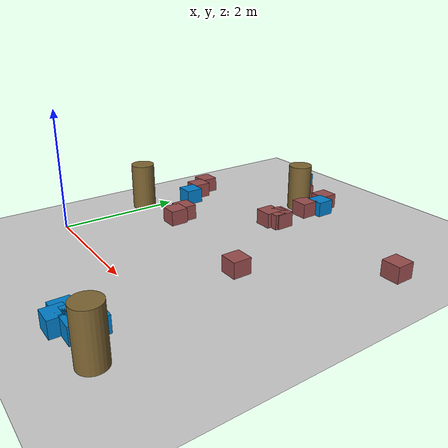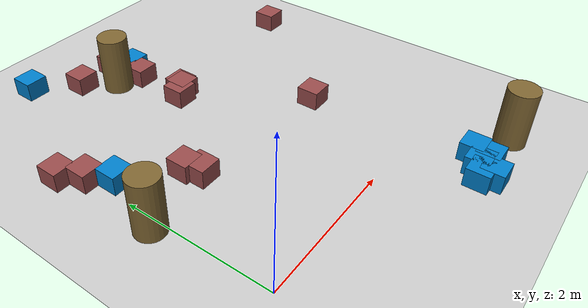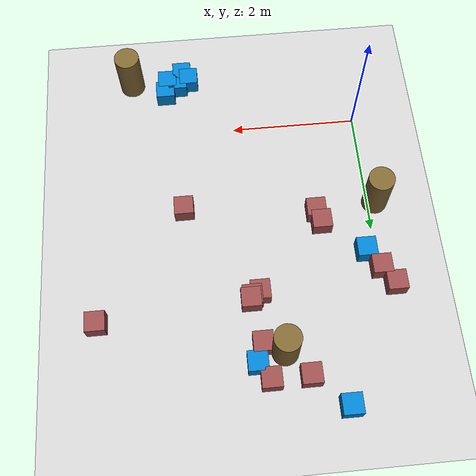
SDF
<sdf version="1.6">
 <world name="default">
  <model name="ground_plane">
   <static>1</static>
   <link name="link">
    <collision name="collision">
     <geometry><plane><normal>0 0 1</normal><size>100 100</size></plane></geometry>
     <surface><friction><ode><mu>100</mu><mu2>50</mu2></ode></friction></surface>
    </collision>
    <visual name="visual">
     <cast_shadows>0</cast_shadows>
     <geometry><plane><normal>0 0 1</normal><size>100 100</size></plane></geometry>
     <material>
      <script><uri>file://media/materials/scripts/gazebo.material</uri><name>Gazebo/Grey</name></script>
     </material>
    </visual>
   </link>
  </model>
  <model name="mini_cylinder_0_clone_0_clone_clone_clone_clone_4">
   <link name="link">
    <inertial>
     <mass>1</mass>
     <inertia><ixx>0.145833</ixx><ixy>0</ixy><ixz>0</ixz><iyy>0.145833</iyy><iyz>0</iyz><izz>0.125</izz></inertia>
    </inertial>
    <visual name="visual">
     <geometry><cylinder><radius>0.2</radius><length>0.8</length></cylinder></geometry>
     <material>
      <script><name>Gazebo/Grey</name><uri>file://media/materials/scripts/gazebo.material</uri></script>
      <shader type="vertex"><normal_map>__default__</normal_map></shader>
      <ambient>0.5 0.4 0.2 1</ambient>
      <diffuse>0.7 0.7 0.7 1</diffuse>
      <specular>0.01 0.01 0.01 1</specular>
      <emissive>0 0 0 1</emissive>
     </material>
    </visual>
    <collision name="collision">
     <geometry><cylinder><radius>0.2</radius><length>0.8</length></cylinder></geometry>
     <surface>
      <friction>
       <ode><mu>1</mu><mu2>1</mu2><fdir1>0 0 0</fdir1><slip1>0</slip1><slip2>0</slip2></ode>
       <torsional>
        <coefficient>1</coefficient>
        <patch_radius>0</patch_radius>
        <surface_radius>0</surface_radius>
        <use_patch_radius>1</use_patch_radius>
        <ode><slip>0</slip></ode>
       </torsional>
      </friction>
      <bounce><restitution_coefficient>0</restitution_coefficient><threshold>1e+06</threshold></bounce>
      <contact>
       <collide_without_contact>0</collide_without_contact>
       <collide_without_contact_bitmask>1</collide_without_contact_bitmask>
       <collide_bitmask>1</collide_bitmask>
       <ode>
        <soft_cfm>0</soft_cfm>
        <soft_erp>0.2</soft_erp>
        <kp>1e+13</kp>
        <kd>1</kd>
        <max_vel>0.01</max_vel>
        <min_depth>0</min_depth>
       </ode>
       <bullet>
        <split_impulse>1</split_impulse>
        <split_impulse_penetration_threshold>-0.01</split_impulse_penetration_threshold>
        <soft_cfm>0</soft_cfm>
        <soft_erp>0.2</soft_erp>
        <kp>1e+13</kp>
        <kd>1</kd>
       </bullet>
      </contact>
     </surface>
    </collision>
   </link>
   <static>1</static>
   <pose>-0.121853 1.53981 0.4 0 -0 0</pose>
  </model>
  <model name="mini_cylinder_0_clone_0_clone_clone_clone_clone_10">
   <link name="link">
    <inertial>
     <mass>1</mass>
     <inertia><ixx>0.145833</ixx><ixy>0</ixy><ixz>0</ixz><iyy>0.145833</iyy><iyz>0</iyz><izz>0.125</izz></inertia>
    </inertial>
    <visual name="visual">
     <geometry><cylinder><radius>0.2</radius><length>0.8</length></cylinder></geometry>
     <material>
      <script><name>Gazebo/Grey</name><uri>file://media/materials/scripts/gazebo.material</uri></script>
      <shader type="vertex"><normal_map>__default__</normal_map></shader>
      <ambient>0.5 0.4 0.2 1</ambient>
      <diffuse>0.7 0.7 0.7 1</diffuse>
      <specular>0.01 0.01 0.01 1</specular>
      <emissive>0 0 0 1</emissive>
     </material>
    </visual>
    <collision name="collision">
     <geometry><cylinder><radius>0.2</radius><length>0.8</length></cylinder></geometry>
     <surface>
      <friction>
       <ode><mu>1</mu><mu2>1</mu2><fdir1>0 0 0</fdir1><slip1>0</slip1><slip2>0</slip2></ode>
       <torsional>
        <coefficient>1</coefficient>
        <patch_radius>0</patch_radius>
        <surface_radius>0</surface_radius>
        <use_patch_radius>1</use_patch_radius>
        <ode><slip>0</slip></ode>
       </torsional>
      </friction>
      <bounce><restitution_coefficient>0</restitution_coefficient><threshold>1e+06</threshold></bounce>
      <contact>
       <collide_without_contact>0</collide_without_contact>
       <collide_without_contact_bitmask>1</collide_without_contact_bitmask>
       <collide_bitmask>1</collide_bitmask>
       <ode>
        <soft_cfm>0</soft_cfm>
        <soft_erp>0.2</soft_erp>
        <kp>1e+13</kp>
        <kd>1</kd>
        <max_vel>0.01</max_vel>
        <min_depth>0</min_depth>
       </ode>
       <bullet>
        <split_impulse>1</split_impulse>
        <split_impulse_penetration_threshold>-0.01</split_impulse_penetration_threshold>
        <soft_cfm>0</soft_cfm>
        <soft_erp>0.2</soft_erp>
        <kp>1e+13</kp>
        <kd>1</kd>
       </bullet>
      </contact>
     </surface>
    </collision>
   </link>
   <static>1</static>
   <pose>3.64698 -1.03635 0.4 0 -0 0</pose>
  </model>
  <model name="mini_cylinder_0_clone_0_clone_clone_clone_clone_12">
   <link name="link">
    <inertial>
     <mass>1</mass>
     <inertia><ixx>0.145833</ixx><ixy>0</ixy><ixz>0</ixz><iyy>0.145833</iyy><iyz>0</iyz><izz>0.125</izz></inertia>
    </inertial>
    <visual name="visual">
     <geometry><cylinder><radius>0.2</radius><length>0.8</length></cylinder></geometry>
     <material>
      <script><name>Gazebo/Grey</name><uri>file://media/materials/scripts/gazebo.material</uri></script>
      <shader type="vertex"><normal_map>__default__</normal_map></shader>
      <ambient>0.5 0.4 0.2 1</ambient>
      <diffuse>0.7 0.7 0.7 1</diffuse>
      <specular>0.01 0.01 0.01 1</specular>
      <emissive>0 0 0 1</emissive>
     </material>
    </visual>
    <collision name="collision">
     <geometry><cylinder><radius>0.2</radius><length>0.8</length></cylinder></geometry>
     <surface>
      <friction>
       <ode><mu>1</mu><mu2>1</mu2><fdir1>0 0 0</fdir1><slip1>0</slip1><slip2>0</slip2></ode>
       <torsional>
        <coefficient>1</coefficient>
        <patch_radius>0</patch_radius>
        <surface_radius>0</surface_radius>
        <use_patch_radius>1</use_patch_radius>
        <ode><slip>0</slip></ode>
       </torsional>
      </friction>
      <bounce><restitution_coefficient>0</restitution_coefficient><threshold>1e+06</threshold></bounce>
      <contact>
       <collide_without_contact>0</collide_without_contact>
       <collide_without_contact_bitmask>1</collide_without_contact_bitmask>
       <collide_bitmask>1</collide_bitmask>
       <ode>
        <soft_cfm>0</soft_cfm>
        <soft_erp>0.2</soft_erp>
        <kp>1e+13</kp>
        <kd>1</kd>
        <max_vel>0.01</max_vel>
        <min_depth>0</min_depth>
       </ode>
       <bullet>
        <split_impulse>1</split_impulse>
        <split_impulse_penetration_threshold>-0.01</split_impulse_penetration_threshold>
        <soft_cfm>0</soft_cfm>
        <soft_erp>0.2</soft_erp>
        <kp>1e+13</kp>
        <kd>1</kd>
       </bullet>
      </contact>
     </surface>
    </collision>
   </link>
   <static>1</static>
   <pose>1.56031 3.83174 0.4 0 -0 0</pose>
  </model>
  <model name="unit_box_0.3_red">
   <link name="link">
    <inertial>
     <mass>1</mass>
     <inertia>
      <ixx>0.166667</ixx>
      <ixy>0</ixy>
      <ixz>0</ixz>
      <iyy>0.166667</iyy>
      <iyz>0</iyz>
      <izz>0.166667</izz>
     </inertia>
    </inertial>
    <visual name="visual">
     <geometry><box><size>0.3 0.3 0.5</size></box></geometry>
     <material>
      <script><name>Gazebo/Grey</name><uri>file://media/materials/scripts/gazebo.material</uri></script>
      <shader type="pixel"><normal_map>__default__</normal_map></shader>
      <ambient>0.6 0.3 0.3 1</ambient>
      <diffuse>0.7 0.7 0.7 1</diffuse>
      <specular>0.01 0.01 0.01 1</specular>
      <emissive>0 0 0 1</emissive>
     </material>
    </visual>
    <collision name="collision">
     <geometry><box><size>0.3 0.3 0.5</size></box></geometry>
     <surface>
      <friction>
       <ode><mu>1</mu><mu2>1</mu2><fdir1>0 0 0</fdir1><slip1>0</slip1><slip2>0</slip2></ode>
       <torsional>
        <coefficient>1</coefficient>
        <patch_radius>0</patch_radius>
        <surface_radius>0</surface_radius>
        <use_patch_radius>1</use_patch_radius>
        <ode><slip>0</slip></ode>
       </torsional>
      </friction>
      <bounce><restitution_coefficient>0</restitution_coefficient><threshold>1e+06</threshold></bounce>
      <contact>
       <collide_without_contact>0</collide_without_contact>
       <collide_without_contact_bitmask>1</collide_without_contact_bitmask>
       <collide_bitmask>1</collide_bitmask>
       <ode>
        <soft_cfm>0</soft_cfm>
        <soft_erp>0.2</soft_erp>
        <kp>1e+13</kp>
        <kd>1</kd>
        <max_vel>0.01</max_vel>
        <min_depth>0</min_depth>
       </ode>
       <bullet>
        <split_impulse>1</split_impulse>
        <split_impulse_penetration_threshold>-0.01</split_impulse_penetration_threshold>
        <soft_cfm>0</soft_cfm>
        <soft_erp>0.2</soft_erp>
        <kp>1e+13</kp>
        <kd>1</kd>
       </bullet>
      </contact>
     </surface>
    </collision>
   </link>
   <static>0</static>
   <pose>0.832793 1.64215 0 0 -0 0</pose>
  </model>
  <model name="unit_box_0.3_grue">
   <link name="link">
    <inertial>
     <mass>1</mass>
     <inertia>
      <ixx>0.166667</ixx>
      <ixy>0</ixy>
      <ixz>0</ixz>
      <iyy>0.166667</iyy>
      <iyz>0</iyz>
      <izz>0.166667</izz>
     </inertia>
    </inertial>
    <visual name="visual">
     <geometry><box><size>0.3 0.3 0.5</size></box></geometry>
     <material>
      <script><name>Gazebo/Grey</name><uri>file://media/materials/scripts/gazebo.material</uri></script>
      <shader type="pixel"><normal_map>__default__</normal_map></shader>
      <ambient>0 0.5 0.8 1</ambient>
      <diffuse>0.7 0.7 0.7 1</diffuse>
      <specular>0.01 0.01 0.01 1</specular>
      <emissive>0 0 0 1</emissive>
     </material>
    </visual>
    <collision name="collision">
     <geometry><box><size>0.3 0.3 0.5</size></box></geometry>
     <surface>
      <friction>
       <ode><mu>1</mu><mu2>1</mu2><fdir1>0 0 0</fdir1><slip1>0</slip1><slip2>0</slip2></ode>
       <torsional>
        <coefficient>1</coefficient>
        <patch_radius>0</patch_radius>
        <surface_radius>0</surface_radius>
        <use_patch_radius>1</use_patch_radius>
        <ode><slip>0</slip></ode>
       </torsional>
      </friction>
      <bounce><restitution_coefficient>0</restitution_coefficient><threshold>1e+06</threshold></bounce>
      <contact>
       <collide_without_contact>0</collide_without_contact>
       <collide_without_contact_bitmask>1</collide_without_contact_bitmask>
       <collide_bitmask>1</collide_bitmask>
       <ode>
        <soft_cfm>0</soft_cfm>
        <soft_erp>0.2</soft_erp>
        <kp>1e+13</kp>
        <kd>1</kd>
        <max_vel>0.01</max_vel>
        <min_depth>0</min_depth>
       </ode>
       <bullet>
        <split_impulse>1</split_impulse>
        <split_impulse_penetration_threshold>-0.01</split_impulse_penetration_threshold>
        <soft_cfm>0</soft_cfm>
        <soft_erp>0.2</soft_erp>
        <kp>1e+13</kp>
        <kd>1</kd>
       </bullet>
      </contact>
     </surface>
    </collision>
   </link>
   <static>0</static>
   <pose>0.155019 2.37557 0 0 -0 0</pose>
  </model>
  <model name="unit_box_0.3_red_clone">
   <link name="link">
    <inertial>
     <mass>1</mass>
     <inertia>
      <ixx>0.166667</ixx>
      <ixy>0</ixy>
      <ixz>0</ixz>
      <iyy>0.166667</iyy>
      <iyz>0</iyz>
      <izz>0.166667</izz>
     </inertia>
    </inertial>
    <visual name="visual">
     <geometry><box><size>0.3 0.3 0.5</size></box></geometry>
     <material>
      <script><name>Gazebo/Grey</name><uri>file://media/materials/scripts/gazebo.material</uri></script>
      <shader type="pixel"><normal_map>__default__</normal_map></shader>
      <ambient>0.6 0.3 0.3 1</ambient>
      <diffuse>0.7 0.7 0.7 1</diffuse>
      <specular>0.01 0.01 0.01 1</specular>
      <emissive>0 0 0 1</emissive>
     </material>
    </visual>
    <collision name="collision">
     <geometry><box><size>0.3 0.3 0.5</size></box></geometry>
     <surface>
      <friction>
       <ode><mu>1</mu><mu2>1</mu2><fdir1>0 0 0</fdir1><slip1>0</slip1><slip2>0</slip2></ode>
       <torsional>
        <coefficient>1</coefficient>
        <patch_radius>0</patch_radius>
        <surface_radius>0</surface_radius>
        <use_patch_radius>1</use_patch_radius>
        <ode><slip>0</slip></ode>
       </torsional>
      </friction>
      <bounce><restitution_coefficient>0</restitution_coefficient><threshold>1e+06</threshold></bounce>
      <contact>
       <collide_without_contact>0</collide_without_contact>
       <collide_without_contact_bitmask>1</collide_without_contact_bitmask>
       <collide_bitmask>1</collide_bitmask>
       <ode>
        <soft_cfm>0</soft_cfm>
        <soft_erp>0.2</soft_erp>
        <kp>1e+13</kp>
        <kd>1</kd>
        <max_vel>0.01</max_vel>
        <min_depth>0</min_depth>
       </ode>
       <bullet>
        <split_impulse>1</split_impulse>
        <split_impulse_penetration_threshold>-0.01</split_impulse_penetration_threshold>
        <soft_cfm>0</soft_cfm>
        <soft_erp>0.2</soft_erp>
        <kp>1e+13</kp>
        <kd>1</kd>
       </bullet>
      </contact>
     </surface>
    </collision>
   </link>
   <static>0</static>
   <pose>0.773711 1.84988 0 0 -0 0</pose>
  </model>
  <model name="unit_box_0.3_red_clone_clone">
   <link name="link">
    <inertial>
     <mass>1</mass>
     <inertia>
      <ixx>0.166667</ixx>
      <ixy>0</ixy>
      <ixz>0</ixz>
      <iyy>0.166667</iyy>
      <iyz>0</iyz>
      <izz>0.166667</izz>
     </inertia>
    </inertial>
    <visual name="visual">
     <geometry><box><size>0.3 0.3 0.5</size></box></geometry>
     <material>
      <script><name>Gazebo/Grey</name><uri>file://media/materials/scripts/gazebo.material</uri></script>
      <shader type="pixel"><normal_map>__default__</normal_map></shader>
      <ambient>0.6 0.3 0.3 1</ambient>
      <diffuse>0.7 0.7 0.7 1</diffuse>
      <specular>0.01 0.01 0.01 1</specular>
      <emissive>0 0 0 1</emissive>
     </material>
    </visual>
    <collision name="collision">
     <geometry><box><size>0.3 0.3 0.5</size></box></geometry>
     <surface>
      <friction>
       <ode><mu>1</mu><mu2>1</mu2><fdir1>0 0 0</fdir1><slip1>0</slip1><slip2>0</slip2></ode>
       <torsional>
        <coefficient>1</coefficient>
        <patch_radius>0</patch_radius>
        <surface_radius>0</surface_radius>
        <use_patch_radius>1</use_patch_radius>
        <ode><slip>0</slip></ode>
       </torsional>
      </friction>
      <bounce><restitution_coefficient>0</restitution_coefficient><threshold>1e+06</threshold></bounce>
      <contact>
       <collide_without_contact>0</collide_without_contact>
       <collide_without_contact_bitmask>1</collide_without_contact_bitmask>
       <collide_bitmask>1</collide_bitmask>
       <ode>
        <soft_cfm>0</soft_cfm>
        <soft_erp>0.2</soft_erp>
        <kp>1e+13</kp>
        <kd>1</kd>
        <max_vel>0.01</max_vel>
        <min_depth>0</min_depth>
       </ode>
       <bullet>
        <split_impulse>1</split_impulse>
        <split_impulse_penetration_threshold>-0.01</split_impulse_penetration_threshold>
        <soft_cfm>0</soft_cfm>
        <soft_erp>0.2</soft_erp>
        <kp>1e+13</kp>
        <kd>1</kd>
       </bullet>
      </contact>
     </surface>
    </collision>
   </link>
   <static>0</static>
   <pose>2.89181 1.42945 0 0 -0 0</pose>
  </model>
  <model name="unit_box_0.3_red_clone_clone_0">
   <link name="link">
    <inertial>
     <mass>1</mass>
     <inertia>
      <ixx>0.166667</ixx>
      <ixy>0</ixy>
      <ixz>0</ixz>
      <iyy>0.166667</iyy>
      <iyz>0</iyz>
      <izz>0.166667</izz>
     </inertia>
    </inertial>
    <visual name="visual">
     <geometry><box><size>0.3 0.3 0.5</size></box></geometry>
     <material>
      <script><name>Gazebo/Grey</name><uri>file://media/materials/scripts/gazebo.material</uri></script>
      <shader type="pixel"><normal_map>__default__</normal_map></shader>
      <ambient>0.6 0.3 0.3 1</ambient>
      <diffuse>0.7 0.7 0.7 1</diffuse>
      <specular>0.01 0.01 0.01 1</specular>
      <emissive>0 0 0 1</emissive>
     </material>
    </visual>
    <collision name="collision">
     <geometry><box><size>0.3 0.3 0.5</size></box></geometry>
     <surface>
      <friction>
       <ode><mu>1</mu><mu2>1</mu2><fdir1>0 0 0</fdir1><slip1>0</slip1><slip2>0</slip2></ode>
       <torsional>
        <coefficient>1</coefficient>
        <patch_radius>0</patch_radius>
        <surface_radius>0</surface_radius>
        <use_patch_radius>1</use_patch_radius>
        <ode><slip>0</slip></ode>
       </torsional>
      </friction>
      <bounce><restitution_coefficient>0</restitution_coefficient><threshold>1e+06</threshold></bounce>
      <contact>
       <collide_without_contact>0</collide_without_contact>
       <collide_without_contact_bitmask>1</collide_without_contact_bitmask>
       <collide_bitmask>1</collide_bitmask>
       <ode>
        <soft_cfm>0</soft_cfm>
        <soft_erp>0.2</soft_erp>
        <kp>1e+13</kp>
        <kd>1</kd>
        <max_vel>0.01</max_vel>
        <min_depth>0</min_depth>
       </ode>
       <bullet>
        <split_impulse>1</split_impulse>
        <split_impulse_penetration_threshold>-0.01</split_impulse_penetration_threshold>
        <soft_cfm>0</soft_cfm>
        <soft_erp>0.2</soft_erp>
        <kp>1e+13</kp>
        <kd>1</kd>
       </bullet>
      </contact>
     </surface>
    </collision>
   </link>
   <static>0</static>
   <pose>-0.030499 2.66703 0 0 -0 0</pose>
  </model>
  <model name="unit_box_0.3_red_clone_clone_1">
   <link name="link">
    <inertial>
     <mass>1</mass>
     <inertia>
      <ixx>0.166667</ixx>
      <ixy>0</ixy>
      <ixz>0</ixz>
      <iyy>0.166667</iyy>
      <iyz>0</iyz>
      <izz>0.166667</izz>
     </inertia>
    </inertial>
    <visual name="visual">
     <geometry><box><size>0.3 0.3 0.5</size></box></geometry>
     <material>
      <script><name>Gazebo/Grey</name><uri>file://media/materials/scripts/gazebo.material</uri></script>
      <shader type="pixel"><normal_map>__default__</normal_map></shader>
      <ambient>0.6 0.3 0.3 1</ambient>
      <diffuse>0.7 0.7 0.7 1</diffuse>
      <specular>0.01 0.01 0.01 1</specular>
      <emissive>0 0 0 1</emissive>
     </material>
    </visual>
    <collision name="collision">
     <geometry><box><size>0.3 0.3 0.5</size></box></geometry>
     <surface>
      <friction>
       <ode><mu>1</mu><mu2>1</mu2><fdir1>0 0 0</fdir1><slip1>0</slip1><slip2>0</slip2></ode>
       <torsional>
        <coefficient>1</coefficient>
        <patch_radius>0</patch_radius>
        <surface_radius>0</surface_radius>
        <use_patch_radius>1</use_patch_radius>
        <ode><slip>0</slip></ode>
       </torsional>
      </friction>
      <bounce><restitution_coefficient>0</restitution_coefficient><threshold>1e+06</threshold></bounce>
      <contact>
       <collide_without_contact>0</collide_without_contact>
       <collide_without_contact_bitmask>1</collide_without_contact_bitmask>
       <collide_bitmask>1</collide_bitmask>
       <ode>
        <soft_cfm>0</soft_cfm>
        <soft_erp>0.2</soft_erp>
        <kp>1e+13</kp>
        <kd>1</kd>
        <max_vel>0.01</max_vel>
        <min_depth>0</min_depth>
       </ode>
       <bullet>
        <split_impulse>1</split_impulse>
        <split_impulse_penetration_threshold>-0.01</split_impulse_penetration_threshold>
        <soft_cfm>0</soft_cfm>
        <soft_erp>0.2</soft_erp>
        <kp>1e+13</kp>
        <kd>1</kd>
       </bullet>
      </contact>
     </surface>
    </collision>
   </link>
   <static>0</static>
   <pose>-0.207253 2.94546 0 0 -0 0</pose>
  </model>
  <model name="unit_box_0.3_grue_clone_5">
   <link name="link">
    <inertial>
     <mass>1</mass>
     <inertia>
      <ixx>0.166667</ixx>
      <ixy>0</ixy>
      <ixz>0</ixz>
      <iyy>0.166667</iyy>
      <iyz>0</iyz>
      <izz>0.166667</izz>
     </inertia>
    </inertial>
    <visual name="visual">
     <geometry><box><size>0.3 0.3 0.5</size></box></geometry>
     <material>
      <script><name>Gazebo/Grey</name><uri>file://media/materials/scripts/gazebo.material</uri></script>
      <shader type="pixel"><normal_map>__default__</normal_map></shader>
      <ambient>0 0.5 0.8 1</ambient>
      <diffuse>0.7 0.7 0.7 1</diffuse>
      <specular>0.01 0.01 0.01 1</specular>
      <emissive>0 0 0 1</emissive>
     </material>
    </visual>
    <collision name="collision">
     <geometry><box><size>0.3 0.3 0.5</size></box></geometry>
     <surface>
      <friction>
       <ode><mu>1</mu><mu2>1</mu2><fdir1>0 0 0</fdir1><slip1>0</slip1><slip2>0</slip2></ode>
       <torsional>
        <coefficient>1</coefficient>
        <patch_radius>0</patch_radius>
        <surface_radius>0</surface_radius>
        <use_patch_radius>1</use_patch_radius>
        <ode><slip>0</slip></ode>
       </torsional>
      </friction>
      <bounce><restitution_coefficient>0</restitution_coefficient><threshold>1e+06</threshold></bounce>
      <contact>
       <collide_without_contact>0</collide_without_contact>
       <collide_without_contact_bitmask>1</collide_without_contact_bitmask>
       <collide_bitmask>1</collide_bitmask>
       <ode>
        <soft_cfm>0</soft_cfm>
        <soft_erp>0.2</soft_erp>
        <kp>1e+13</kp>
        <kd>1</kd>
        <max_vel>0.01</max_vel>
        <min_depth>0</min_depth>
       </ode>
       <bullet>
        <split_impulse>1</split_impulse>
        <split_impulse_penetration_threshold>-0.01</split_impulse_penetration_threshold>
        <soft_cfm>0</soft_cfm>
        <soft_erp>0.2</soft_erp>
        <kp>1e+13</kp>
        <kd>1</kd>
       </bullet>
      </contact>
     </surface>
    </collision>
   </link>
   <static>0</static>
   <pose>0.730931 4.68311 0 0 -0 0</pose>
  </model>
  <model name="unit_box_0.3_red_clone_clone_0_clone_0">
   <link name="link">
    <inertial>
     <mass>1</mass>
     <inertia>
      <ixx>0.166667</ixx>
      <ixy>0</ixy>
      <ixz>0</ixz>
      <iyy>0.166667</iyy>
      <iyz>0</iyz>
      <izz>0.166667</izz>
     </inertia>
    </inertial>
    <visual name="visual">
     <geometry><box><size>0.3 0.3 0.5</size></box></geometry>
     <material>
      <script><name>Gazebo/Grey</name><uri>file://media/materials/scripts/gazebo.material</uri></script>
      <shader type="pixel"><normal_map>__default__</normal_map></shader>
      <ambient>0.6 0.3 0.3 1</ambient>
      <diffuse>0.7 0.7 0.7 1</diffuse>
      <specular>0.01 0.01 0.01 1</specular>
      <emissive>0 0 0 1</emissive>
     </material>
    </visual>
    <collision name="collision">
     <geometry><box><size>0.3 0.3 0.5</size></box></geometry>
     <surface>
      <friction>
       <ode><mu>1</mu><mu2>1</mu2><fdir1>0 0 0</fdir1><slip1>0</slip1><slip2>0</slip2></ode>
       <torsional>
        <coefficient>1</coefficient>
        <patch_radius>0</patch_radius>
        <surface_radius>0</surface_radius>
        <use_patch_radius>1</use_patch_radius>
        <ode><slip>0</slip></ode>
       </torsional>
      </friction>
      <bounce><restitution_coefficient>0</restitution_coefficient><threshold>1e+06</threshold></bounce>
      <contact>
       <collide_without_contact>0</collide_without_contact>
       <collide_without_contact_bitmask>1</collide_without_contact_bitmask>
       <collide_bitmask>1</collide_bitmask>
       <ode>
        <soft_cfm>0</soft_cfm>
        <soft_erp>0.2</soft_erp>
        <kp>1e+13</kp>
        <kd>1</kd>
        <max_vel>0.01</max_vel>
        <min_depth>0</min_depth>
       </ode>
       <bullet>
        <split_impulse>1</split_impulse>
        <split_impulse_penetration_threshold>-0.01</split_impulse_penetration_threshold>
        <soft_cfm>0</soft_cfm>
        <soft_erp>0.2</soft_erp>
        <kp>1e+13</kp>
        <kd>1</kd>
       </bullet>
      </contact>
     </surface>
    </collision>
   </link>
   <static>0</static>
   <pose>1.8708 3.69052 0 0 -0 0</pose>
  </model>
  <model name="unit_box_0.3_red_clone_clone_0_clone_1">
   <link name="link">
    <inertial>
     <mass>1</mass>
     <inertia>
      <ixx>0.166667</ixx>
      <ixy>0</ixy>
      <ixz>0</ixz>
      <iyy>0.166667</iyy>
      <iyz>0</iyz>
      <izz>0.166667</izz>
     </inertia>
    </inertial>
    <visual name="visual">
     <geometry><box><size>0.3 0.3 0.5</size></box></geometry>
     <material>
      <script><name>Gazebo/Grey</name><uri>file://media/materials/scripts/gazebo.material</uri></script>
      <shader type="pixel"><normal_map>__default__</normal_map></shader>
      <ambient>0.6 0.3 0.3 1</ambient>
      <diffuse>0.7 0.7 0.7 1</diffuse>
      <specular>0.01 0.01 0.01 1</specular>
      <emissive>0 0 0 1</emissive>
     </material>
    </visual>
    <collision name="collision">
     <geometry><box><size>0.3 0.3 0.5</size></box></geometry>
     <surface>
      <friction>
       <ode><mu>1</mu><mu2>1</mu2><fdir1>0 0 0</fdir1><slip1>0</slip1><slip2>0</slip2></ode>
       <torsional>
        <coefficient>1</coefficient>
        <patch_radius>0</patch_radius>
        <surface_radius>0</surface_radius>
        <use_patch_radius>1</use_patch_radius>
        <ode><slip>0</slip></ode>
       </torsional>
      </friction>
      <bounce><restitution_coefficient>0</restitution_coefficient><threshold>1e+06</threshold></bounce>
      <contact>
       <collide_without_contact>0</collide_without_contact>
       <collide_without_contact_bitmask>1</collide_without_contact_bitmask>
       <collide_bitmask>1</collide_bitmask>
       <ode>
        <soft_cfm>0</soft_cfm>
        <soft_erp>0.2</soft_erp>
        <kp>1e+13</kp>
        <kd>1</kd>
        <max_vel>0.01</max_vel>
        <min_depth>0</min_depth>
       </ode>
       <bullet>
        <split_impulse>1</split_impulse>
        <split_impulse_penetration_threshold>-0.01</split_impulse_penetration_threshold>
        <soft_cfm>0</soft_cfm>
        <soft_erp>0.2</soft_erp>
        <kp>1e+13</kp>
        <kd>1</kd>
       </bullet>
      </contact>
     </surface>
    </collision>
   </link>
   <static>0</static>
   <pose>1.8038 4.21728 0 0 -0 0</pose>
  </model>
  <model name="unit_box_0.3_red_clone_clone_0_clone_2">
   <link name="link">
    <inertial>
     <mass>1</mass>
     <inertia>
      <ixx>0.166667</ixx>
      <ixy>0</ixy>
      <ixz>0</ixz>
      <iyy>0.166667</iyy>
      <iyz>0</iyz>
      <izz>0.166667</izz>
     </inertia>
    </inertial>
    <visual name="visual">
     <geometry><box><size>0.3 0.3 0.5</size></box></geometry>
     <material>
      <script><name>Gazebo/Grey</name><uri>file://media/materials/scripts/gazebo.material</uri></script>
      <shader type="pixel"><normal_map>__default__</normal_map></shader>
      <ambient>0.6 0.3 0.3 1</ambient>
      <diffuse>0.7 0.7 0.7 1</diffuse>
      <specular>0.01 0.01 0.01 1</specular>
      <emissive>0 0 0 1</emissive>
     </material>
    </visual>
    <collision name="collision">
     <geometry><box><size>0.3 0.3 0.5</size></box></geometry>
     <surface>
      <friction>
       <ode><mu>1</mu><mu2>1</mu2><fdir1>0 0 0</fdir1><slip1>0</slip1><slip2>0</slip2></ode>
       <torsional>
        <coefficient>1</coefficient>
        <patch_radius>0</patch_radius>
        <surface_radius>0</surface_radius>
        <use_patch_radius>1</use_patch_radius>
        <ode><slip>0</slip></ode>
       </torsional>
      </friction>
      <bounce><restitution_coefficient>0</restitution_coefficient><threshold>1e+06</threshold></bounce>
      <contact>
       <collide_without_contact>0</collide_without_contact>
       <collide_without_contact_bitmask>1</collide_without_contact_bitmask>
       <collide_bitmask>1</collide_bitmask>
       <ode>
        <soft_cfm>0</soft_cfm>
        <soft_erp>0.2</soft_erp>
        <kp>1e+13</kp>
        <kd>1</kd>
        <max_vel>0.01</max_vel>
        <min_depth>0</min_depth>
       </ode>
       <bullet>
        <split_impulse>1</split_impulse>
        <split_impulse_penetration_threshold>-0.01</split_impulse_penetration_threshold>
        <soft_cfm>0</soft_cfm>
        <soft_erp>0.2</soft_erp>
        <kp>1e+13</kp>
        <kd>1</kd>
       </bullet>
      </contact>
     </surface>
    </collision>
   </link>
   <static>0</static>
   <pose>1.23431 4.21326 0 0 -0 0</pose>
  </model>
  <model name="unit_box_0.3_red_clone_clone_0_clone_3">
   <link name="link">
    <inertial>
     <mass>1</mass>
     <inertia>
      <ixx>0.166667</ixx>
      <ixy>0</ixy>
      <ixz>0</ixz>
      <iyy>0.166667</iyy>
      <iyz>0</iyz>
      <izz>0.166667</izz>
     </inertia>
    </inertial>
    <visual name="visual">
     <geometry><box><size>0.3 0.3 0.5</size></box></geometry>
     <material>
      <script><name>Gazebo/Grey</name><uri>file://media/materials/scripts/gazebo.material</uri></script>
      <shader type="pixel"><normal_map>__default__</normal_map></shader>
      <ambient>0.6 0.3 0.3 1</ambient>
      <diffuse>0.7 0.7 0.7 1</diffuse>
      <specular>0.01 0.01 0.01 1</specular>
      <emissive>0 0 0 1</emissive>
     </material>
    </visual>
    <collision name="collision">
     <geometry><box><size>0.3 0.3 0.5</size></box></geometry>
     <surface>
      <friction>
       <ode><mu>1</mu><mu2>1</mu2><fdir1>0 0 0</fdir1><slip1>0</slip1><slip2>0</slip2></ode>
       <torsional>
        <coefficient>1</coefficient>
        <patch_radius>0</patch_radius>
        <surface_radius>0</surface_radius>
        <use_patch_radius>1</use_patch_radius>
        <ode><slip>0</slip></ode>
       </torsional>
      </friction>
      <bounce><restitution_coefficient>0</restitution_coefficient><threshold>1e+06</threshold></bounce>
      <contact>
       <collide_without_contact>0</collide_without_contact>
       <collide_without_contact_bitmask>1</collide_without_contact_bitmask>
       <collide_bitmask>1</collide_bitmask>
       <ode>
        <soft_cfm>0</soft_cfm>
        <soft_erp>0.2</soft_erp>
        <kp>1e+13</kp>
        <kd>1</kd>
        <max_vel>0.01</max_vel>
        <min_depth>0</min_depth>
       </ode>
       <bullet>
        <split_impulse>1</split_impulse>
        <split_impulse_penetration_threshold>-0.01</split_impulse_penetration_threshold>
        <soft_cfm>0</soft_cfm>
        <soft_erp>0.2</soft_erp>
        <kp>1e+13</kp>
        <kd>1</kd>
       </bullet>
      </contact>
     </surface>
    </collision>
   </link>
   <static>0</static>
   <pose>4.27944 3.18019 0 0 -0 0</pose>
  </model>
  <model name="unit_box_0.3_grue_clone_7">
   <link name="link">
    <inertial>
     <mass>1</mass>
     <inertia>
      <ixx>0.166667</ixx>
      <ixy>0</ixy>
      <ixz>0</ixz>
      <iyy>0.166667</iyy>
      <iyz>0</iyz>
      <izz>0.166667</izz>
     </inertia>
    </inertial>
    <visual name="visual">
     <geometry><box><size>0.3 0.3 0.5</size></box></geometry>
     <material>
      <script><name>Gazebo/Grey</name><uri>file://media/materials/scripts/gazebo.material</uri></script>
      <shader type="pixel"><normal_map>__default__</normal_map></shader>
      <ambient>0 0.5 0.8 1</ambient>
      <diffuse>0.7 0.7 0.7 1</diffuse>
      <specular>0.01 0.01 0.01 1</specular>
      <emissive>0 0 0 1</emissive>
     </material>
    </visual>
    <collision name="collision">
     <geometry><box><size>0.3 0.3 0.5</size></box></geometry>
     <surface>
      <friction>
       <ode><mu>1</mu><mu2>1</mu2><fdir1>0 0 0</fdir1><slip1>0</slip1><slip2>0</slip2></ode>
       <torsional>
        <coefficient>1</coefficient>
        <patch_radius>0</patch_radius>
        <surface_radius>0</surface_radius>
        <use_patch_radius>1</use_patch_radius>
        <ode><slip>0</slip></ode>
       </torsional>
      </friction>
      <bounce><restitution_coefficient>0</restitution_coefficient><threshold>1e+06</threshold></bounce>
      <contact>
       <collide_without_contact>0</collide_without_contact>
       <collide_without_contact_bitmask>1</collide_without_contact_bitmask>
       <collide_bitmask>1</collide_bitmask>
       <ode>
        <soft_cfm>0</soft_cfm>
        <soft_erp>0.2</soft_erp>
        <kp>1e+13</kp>
        <kd>1</kd>
        <max_vel>0.01</max_vel>
        <min_depth>0</min_depth>
       </ode>
       <bullet>
        <split_impulse>1</split_impulse>
        <split_impulse_penetration_threshold>-0.01</split_impulse_penetration_threshold>
        <soft_cfm>0</soft_cfm>
        <soft_erp>0.2</soft_erp>
        <kp>1e+13</kp>
        <kd>1</kd>
       </bullet>
      </contact>
     </surface>
    </collision>
   </link>
   <static>0</static>
   <pose>3.04238 -0.98343 0 0 -0 0</pose>
  </model>
  <model name="unit_box_0.3_grue_clone_8">
   <link name="link">
    <inertial>
     <mass>1</mass>
     <inertia>
      <ixx>0.166667</ixx>
      <ixy>0</ixy>
      <ixz>0</ixz>
      <iyy>0.166667</iyy>
      <iyz>0</iyz>
      <izz>0.166667</izz>
     </inertia>
    </inertial>
    <visual name="visual">
     <geometry><box><size>0.3 0.3 0.5</size></box></geometry>
     <material>
      <script><name>Gazebo/Grey</name><uri>file://media/materials/scripts/gazebo.material</uri></script>
      <shader type="pixel"><normal_map>__default__</normal_map></shader>
      <ambient>0 0.5 0.8 1</ambient>
      <diffuse>0.7 0.7 0.7 1</diffuse>
      <specular>0.01 0.01 0.01 1</specular>
      <emissive>0 0 0 1</emissive>
     </material>
    </visual>
    <collision name="collision">
     <geometry><box><size>0.3 0.3 0.5</size></box></geometry>
     <surface>
      <friction>
       <ode><mu>1</mu><mu2>1</mu2><fdir1>0 0 0</fdir1><slip1>0</slip1><slip2>0</slip2></ode>
       <torsional>
        <coefficient>1</coefficient>
        <patch_radius>0</patch_radius>
        <surface_radius>0</surface_radius>
        <use_patch_radius>1</use_patch_radius>
        <ode><slip>0</slip></ode>
       </torsional>
      </friction>
      <bounce><restitution_coefficient>0</restitution_coefficient><threshold>1e+06</threshold></bounce>
      <contact>
       <collide_without_contact>0</collide_without_contact>
       <collide_without_contact_bitmask>1</collide_without_contact_bitmask>
       <collide_bitmask>1</collide_bitmask>
       <ode>
        <soft_cfm>0</soft_cfm>
        <soft_erp>0.2</soft_erp>
        <kp>1e+13</kp>
        <kd>1</kd>
        <max_vel>0.01</max_vel>
        <min_depth>0</min_depth>
       </ode>
       <bullet>
        <split_impulse>1</split_impulse>
        <split_impulse_penetration_threshold>-0.01</split_impulse_penetration_threshold>
        <soft_cfm>0</soft_cfm>
        <soft_erp>0.2</soft_erp>
        <kp>1e+13</kp>
        <kd>1</kd>
       </bullet>
      </contact>
     </surface>
    </collision>
   </link>
   <static>0</static>
   <pose>2.87323 -0.921358 0 0 -0 0</pose>
  </model>
  <model name="unit_box_0.3_grue_clone_9">
   <link name="link">
    <inertial>
     <mass>1</mass>
     <inertia>
      <ixx>0.166667</ixx>
      <ixy>0</ixy>
      <ixz>0</ixz>
      <iyy>0.166667</iyy>
      <iyz>0</iyz>
      <izz>0.166667</izz>
     </inertia>
    </inertial>
    <visual name="visual">
     <geometry><box><size>0.3 0.3 0.5</size></box></geometry>
     <material>
      <script><name>Gazebo/Grey</name><uri>file://media/materials/scripts/gazebo.material</uri></script>
      <shader type="pixel"><normal_map>__default__</normal_map></shader>
      <ambient>0 0.5 0.8 1</ambient>
      <diffuse>0.7 0.7 0.7 1</diffuse>
      <specular>0.01 0.01 0.01 1</specular>
      <emissive>0 0 0 1</emissive>
     </material>
    </visual>
    <collision name="collision">
     <geometry><box><size>0.3 0.3 0.5</size></box></geometry>
     <surface>
      <friction>
       <ode><mu>1</mu><mu2>1</mu2><fdir1>0 0 0</fdir1><slip1>0</slip1><slip2>0</slip2></ode>
       <torsional>
        <coefficient>1</coefficient>
        <patch_radius>0</patch_radius>
        <surface_radius>0</surface_radius>
        <use_patch_radius>1</use_patch_radius>
        <ode><slip>0</slip></ode>
       </torsional>
      </friction>
      <bounce><restitution_coefficient>0</restitution_coefficient><threshold>1e+06</threshold></bounce>
      <contact>
       <collide_without_contact>0</collide_without_contact>
       <collide_without_contact_bitmask>1</collide_without_contact_bitmask>
       <collide_bitmask>1</collide_bitmask>
       <ode>
        <soft_cfm>0</soft_cfm>
        <soft_erp>0.2</soft_erp>
        <kp>1e+13</kp>
        <kd>1</kd>
        <max_vel>0.01</max_vel>
        <min_depth>0</min_depth>
       </ode>
       <bullet>
        <split_impulse>1</split_impulse>
        <split_impulse_penetration_threshold>-0.01</split_impulse_penetration_threshold>
        <soft_cfm>0</soft_cfm>
        <soft_erp>0.2</soft_erp>
        <kp>1e+13</kp>
        <kd>1</kd>
       </bullet>
      </contact>
     </surface>
    </collision>
   </link>
   <static>0</static>
   <pose>2.7904 -1.13289 0 0 -0 0</pose>
  </model>
  <model name="unit_box_0.3_grue_clone_10">
   <link name="link">
    <inertial>
     <mass>1</mass>
     <inertia>
      <ixx>0.166667</ixx>
      <ixy>0</ixy>
      <ixz>0</ixz>
      <iyy>0.166667</iyy>
      <iyz>0</iyz>
      <izz>0.166667</izz>
     </inertia>
    </inertial>
    <visual name="visual">
     <geometry><box><size>0.3 0.3 0.5</size></box></geometry>
     <material>
      <script><name>Gazebo/Grey</name><uri>file://media/materials/scripts/gazebo.material</uri></script>
      <shader type="pixel"><normal_map>__default__</normal_map></shader>
      <ambient>0 0.5 0.8 1</ambient>
      <diffuse>0.7 0.7 0.7 1</diffuse>
      <specular>0.01 0.01 0.01 1</specular>
      <emissive>0 0 0 1</emissive>
     </material>
    </visual>
    <collision name="collision">
     <geometry><box><size>0.3 0.3 0.5</size></box></geometry>
     <surface>
      <friction>
       <ode><mu>1</mu><mu2>1</mu2><fdir1>0 0 0</fdir1><slip1>0</slip1><slip2>0</slip2></ode>
       <torsional>
        <coefficient>1</coefficient>
        <patch_radius>0</patch_radius>
        <surface_radius>0</surface_radius>
        <use_patch_radius>1</use_patch_radius>
        <ode><slip>0</slip></ode>
       </torsional>
      </friction>
      <bounce><restitution_coefficient>0</restitution_coefficient><threshold>1e+06</threshold></bounce>
      <contact>
       <collide_without_contact>0</collide_without_contact>
       <collide_without_contact_bitmask>1</collide_without_contact_bitmask>
       <collide_bitmask>1</collide_bitmask>
       <ode>
        <soft_cfm>0</soft_cfm>
        <soft_erp>0.2</soft_erp>
        <kp>1e+13</kp>
        <kd>1</kd>
        <max_vel>0.01</max_vel>
        <min_depth>0</min_depth>
       </ode>
       <bullet>
        <split_impulse>1</split_impulse>
        <split_impulse_penetration_threshold>-0.01</split_impulse_penetration_threshold>
        <soft_cfm>0</soft_cfm>
        <soft_erp>0.2</soft_erp>
        <kp>1e+13</kp>
        <kd>1</kd>
       </bullet>
      </contact>
     </surface>
    </collision>
   </link>
   <static>0</static>
   <pose>3.08312 -0.772228 0 0 -0 0</pose>
  </model>
  <model name="unit_box_0.3_grue_clone_11">
   <link name="link">
    <inertial>
     <mass>1</mass>
     <inertia>
      <ixx>0.166667</ixx>
      <ixy>0</ixy>
      <ixz>0</ixz>
      <iyy>0.166667</iyy>
      <iyz>0</iyz>
      <izz>0.166667</izz>
     </inertia>
    </inertial>
    <visual name="visual">
     <geometry><box><size>0.3 0.3 0.5</size></box></geometry>
     <material>
      <script><name>Gazebo/Grey</name><uri>file://media/materials/scripts/gazebo.material</uri></script>
      <shader type="pixel"><normal_map>__default__</normal_map></shader>
      <ambient>0 0.5 0.8 1</ambient>
      <diffuse>0.7 0.7 0.7 1</diffuse>
      <specular>0.01 0.01 0.01 1</specular>
      <emissive>0 0 0 1</emissive>
     </material>
    </visual>
    <collision name="collision">
     <geometry><box><size>0.3 0.3 0.5</size></box></geometry>
     <surface>
      <friction>
       <ode><mu>1</mu><mu2>1</mu2><fdir1>0 0 0</fdir1><slip1>0</slip1><slip2>0</slip2></ode>
       <torsional>
        <coefficient>1</coefficient>
        <patch_radius>0</patch_radius>
        <surface_radius>0</surface_radius>
        <use_patch_radius>1</use_patch_radius>
        <ode><slip>0</slip></ode>
       </torsional>
      </friction>
      <bounce><restitution_coefficient>0</restitution_coefficient><threshold>1e+06</threshold></bounce>
      <contact>
       <collide_without_contact>0</collide_without_contact>
       <collide_without_contact_bitmask>1</collide_without_contact_bitmask>
       <collide_bitmask>1</collide_bitmask>
       <ode>
        <soft_cfm>0</soft_cfm>
        <soft_erp>0.2</soft_erp>
        <kp>1e+13</kp>
        <kd>1</kd>
        <max_vel>0.01</max_vel>
        <min_depth>0</min_depth>
       </ode>
       <bullet>
        <split_impulse>1</split_impulse>
        <split_impulse_penetration_threshold>-0.01</split_impulse_penetration_threshold>
        <soft_cfm>0</soft_cfm>
        <soft_erp>0.2</soft_erp>
        <kp>1e+13</kp>
        <kd>1</kd>
       </bullet>
      </contact>
     </surface>
    </collision>
   </link>
   <static>0</static>
   <pose>2.68408 -1.00711 0 0 -0 0</pose>
  </model>
  <model name="unit_box_0.3_grue_clone_19">
   <link name="link">
    <inertial>
     <mass>1</mass>
     <inertia>
      <ixx>0.166667</ixx>
      <ixy>0</ixy>
      <ixz>0</ixz>
      <iyy>0.166667</iyy>
      <iyz>0</iyz>
      <izz>0.166667</izz>
     </inertia>
    </inertial>
    <visual name="visual">
     <geometry><box><size>0.3 0.3 0.5</size></box></geometry>
     <material>
      <script><name>Gazebo/Grey</name><uri>file://media/materials/scripts/gazebo.material</uri></script>
      <shader type="pixel"><normal_map>__default__</normal_map></shader>
      <ambient>0 0.5 0.8 1</ambient>
      <diffuse>0.7 0.7 0.7 1</diffuse>
      <specular>0.01 0.01 0.01 1</specular>
      <emissive>0 0 0 1</emissive>
     </material>
    </visual>
    <collision name="collision">
     <geometry><box><size>0.3 0.3 0.5</size></box></geometry>
     <surface>
      <friction>
       <ode><mu>1</mu><mu2>1</mu2><fdir1>0 0 0</fdir1><slip1>0</slip1><slip2>0</slip2></ode>
       <torsional>
        <coefficient>1</coefficient>
        <patch_radius>0</patch_radius>
        <surface_radius>0</surface_radius>
        <use_patch_radius>1</use_patch_radius>
        <ode><slip>0</slip></ode>
       </torsional>
      </friction>
      <bounce><restitution_coefficient>0</restitution_coefficient><threshold>1e+06</threshold></bounce>
      <contact>
       <collide_without_contact>0</collide_without_contact>
       <collide_without_contact_bitmask>1</collide_without_contact_bitmask>
       <collide_bitmask>1</collide_bitmask>
       <ode>
        <soft_cfm>0</soft_cfm>
        <soft_erp>0.2</soft_erp>
        <kp>1e+13</kp>
        <kd>1</kd>
        <max_vel>0.01</max_vel>
        <min_depth>0</min_depth>
       </ode>
       <bullet>
        <split_impulse>1</split_impulse>
        <split_impulse_penetration_threshold>-0.01</split_impulse_penetration_threshold>
        <soft_cfm>0</soft_cfm>
        <soft_erp>0.2</soft_erp>
        <kp>1e+13</kp>
        <kd>1</kd>
       </bullet>
      </contact>
     </surface>
    </collision>
   </link>
   <static>0</static>
   <pose>1.97423 3.9654 0 0 -0 0</pose>
  </model>
  <model name="unit_box_0.3_red_clone_clone_clone_2">
   <link name="link">
    <inertial>
     <mass>1</mass>
     <inertia>
      <ixx>0.166667</ixx>
      <ixy>0</ixy>
      <ixz>0</ixz>
      <iyy>0.166667</iyy>
      <iyz>0</iyz>
      <izz>0.166667</izz>
     </inertia>
    </inertial>
    <visual name="visual">
     <geometry><box><size>0.3 0.3 0.5</size></box></geometry>
     <material>
      <script><name>Gazebo/Grey</name><uri>file://media/materials/scripts/gazebo.material</uri></script>
      <shader type="pixel"><normal_map>__default__</normal_map></shader>
      <ambient>0.6 0.3 0.3 1</ambient>
      <diffuse>0.7 0.7 0.7 1</diffuse>
      <specular>0.01 0.01 0.01 1</specular>
      <emissive>0 0 0 1</emissive>
     </material>
    </visual>
    <collision name="collision">
     <geometry><box><size>0.3 0.3 0.5</size></box></geometry>
     <surface>
      <friction>
       <ode><mu>1</mu><mu2>1</mu2><fdir1>0 0 0</fdir1><slip1>0</slip1><slip2>0</slip2></ode>
       <torsional>
        <coefficient>1</coefficient>
        <patch_radius>0</patch_radius>
        <surface_radius>0</surface_radius>
        <use_patch_radius>1</use_patch_radius>
        <ode><slip>0</slip></ode>
       </torsional>
      </friction>
      <bounce><restitution_coefficient>0</restitution_coefficient><threshold>1e+06</threshold></bounce>
      <contact>
       <collide_without_contact>0</collide_without_contact>
       <collide_without_contact_bitmask>1</collide_without_contact_bitmask>
       <collide_bitmask>1</collide_bitmask>
       <ode>
        <soft_cfm>0</soft_cfm>
        <soft_erp>0.2</soft_erp>
        <kp>1e+13</kp>
        <kd>1</kd>
        <max_vel>0.01</max_vel>
        <min_depth>0</min_depth>
       </ode>
       <bullet>
        <split_impulse>1</split_impulse>
        <split_impulse_penetration_threshold>-0.01</split_impulse_penetration_threshold>
        <soft_cfm>0</soft_cfm>
        <soft_erp>0.2</soft_erp>
        <kp>1e+13</kp>
        <kd>1</kd>
       </bullet>
      </contact>
     </surface>
    </collision>
   </link>
   <static>0</static>
   <pose>1.96077 2.97396 0 0 -0 0</pose>
  </model>
  <model name="unit_box_0.3_red_clone_clone_clone_3">
   <link name="link">
    <inertial>
     <mass>1</mass>
     <inertia>
      <ixx>0.166667</ixx>
      <ixy>0</ixy>
      <ixz>0</ixz>
      <iyy>0.166667</iyy>
      <iyz>0</iyz>
      <izz>0.166667</izz>
     </inertia>
    </inertial>
    <visual name="visual">
     <geometry><box><size>0.3 0.3 0.5</size></box></geometry>
     <material>
      <script><name>Gazebo/Grey</name><uri>file://media/materials/scripts/gazebo.material</uri></script>
      <shader type="pixel"><normal_map>__default__</normal_map></shader>
      <ambient>0.6 0.3 0.3 1</ambient>
      <diffuse>0.7 0.7 0.7 1</diffuse>
      <specular>0.01 0.01 0.01 1</specular>
      <emissive>0 0 0 1</emissive>
     </material>
    </visual>
    <collision name="collision">
     <geometry><box><size>0.3 0.3 0.5</size></box></geometry>
     <surface>
      <friction>
       <ode><mu>1</mu><mu2>1</mu2><fdir1>0 0 0</fdir1><slip1>0</slip1><slip2>0</slip2></ode>
       <torsional>
        <coefficient>1</coefficient>
        <patch_radius>0</patch_radius>
        <surface_radius>0</surface_radius>
        <use_patch_radius>1</use_patch_radius>
        <ode><slip>0</slip></ode>
       </torsional>
      </friction>
      <bounce><restitution_coefficient>0</restitution_coefficient><threshold>1e+06</threshold></bounce>
      <contact>
       <collide_without_contact>0</collide_without_contact>
       <collide_without_contact_bitmask>1</collide_without_contact_bitmask>
       <collide_bitmask>1</collide_bitmask>
       <ode>
        <soft_cfm>0</soft_cfm>
        <soft_erp>0.2</soft_erp>
        <kp>1e+13</kp>
        <kd>1</kd>
        <max_vel>0.01</max_vel>
        <min_depth>0</min_depth>
       </ode>
       <bullet>
        <split_impulse>1</split_impulse>
        <split_impulse_penetration_threshold>-0.01</split_impulse_penetration_threshold>
        <soft_cfm>0</soft_cfm>
        <soft_erp>0.2</soft_erp>
        <kp>1e+13</kp>
        <kd>1</kd>
       </bullet>
      </contact>
     </surface>
    </collision>
   </link>
   <static>0</static>
   <pose>1.83467 2.90976 0 0 -0 0</pose>
  </model>
  <model name="unit_box_0.3_red_clone_clone_clone_4">
   <link name="link">
    <inertial>
     <mass>1</mass>
     <inertia>
      <ixx>0.166667</ixx>
      <ixy>0</ixy>
      <ixz>0</ixz>
      <iyy>0.166667</iyy>
      <iyz>0</iyz>
      <izz>0.166667</izz>
     </inertia>
    </inertial>
    <visual name="visual">
     <geometry><box><size>0.3 0.3 0.5</size></box></geometry>
     <material>
      <script><name>Gazebo/Grey</name><uri>file://media/materials/scripts/gazebo.material</uri></script>
      <shader type="pixel"><normal_map>__default__</normal_map></shader>
      <ambient>0.6 0.3 0.3 1</ambient>
      <diffuse>0.7 0.7 0.7 1</diffuse>
      <specular>0.01 0.01 0.01 1</specular>
      <emissive>0 0 0 1</emissive>
     </material>
    </visual>
    <collision name="collision">
     <geometry><box><size>0.3 0.3 0.5</size></box></geometry>
     <surface>
      <friction>
       <ode><mu>1</mu><mu2>1</mu2><fdir1>0 0 0</fdir1><slip1>0</slip1><slip2>0</slip2></ode>
       <torsional>
        <coefficient>1</coefficient>
        <patch_radius>0</patch_radius>
        <surface_radius>0</surface_radius>
        <use_patch_radius>1</use_patch_radius>
        <ode><slip>0</slip></ode>
       </torsional>
      </friction>
      <bounce><restitution_coefficient>0</restitution_coefficient><threshold>1e+06</threshold></bounce>
      <contact>
       <collide_without_contact>0</collide_without_contact>
       <collide_without_contact_bitmask>1</collide_without_contact_bitmask>
       <collide_bitmask>1</collide_bitmask>
       <ode>
        <soft_cfm>0</soft_cfm>
        <soft_erp>0.2</soft_erp>
        <kp>1e+13</kp>
        <kd>1</kd>
        <max_vel>0.01</max_vel>
        <min_depth>0</min_depth>
       </ode>
       <bullet>
        <split_impulse>1</split_impulse>
        <split_impulse_penetration_threshold>-0.01</split_impulse_penetration_threshold>
        <soft_cfm>0</soft_cfm>
        <soft_erp>0.2</soft_erp>
        <kp>1e+13</kp>
        <kd>1</kd>
       </bullet>
      </contact>
     </surface>
    </collision>
   </link>
   <static>0</static>
   <pose>1.98157 3.01623 0 0 -0 0</pose>
  </model>
 </world>
</sdf>
